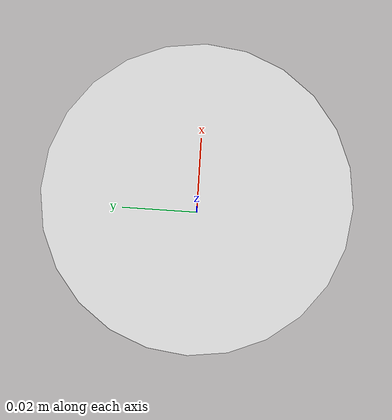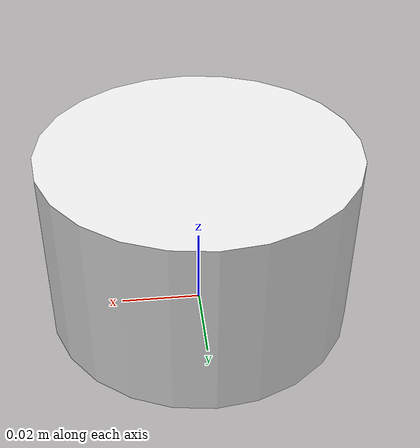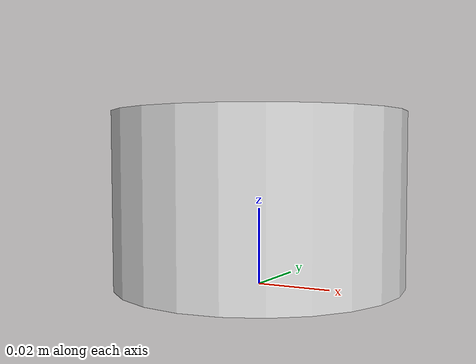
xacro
<?xml version="1.0"?>
<robot xmlns:xacro="http://www.ros.org/wiki/xacro">
  <!-- RPLIDAR A1M8 Parameters -->
  <xacro:property name="lidar_radius" value="0.038" />  <!-- Approximate radius of the LiDAR -->
  <xacro:property name="lidar_height" value="0.045" />   <!-- Approximate height of the LiDAR -->

  <!-- RPLIDAR A1M8 Link -->
  <link name="rplidar_link">
    <visual>
      <origin xyz="0 0 ${lidar_height/2}" rpy="0 0 0"/>
      <geometry>
        <cylinder radius="${lidar_radius}" length="${lidar_height}"/>
      </geometry>
      <material name="sensor_white"/>
    </visual>

    <collision>
      <origin xyz="0 0 ${lidar_height/2}" rpy="0 0 0"/>
      <geometry>
        <cylinder radius="${lidar_radius}" length="${lidar_height}"/>
      </geometry>
    </collision>
  </link>

  <!-- The joint is already defined in dojo_robot.urdf.xacro -->
</robot>
